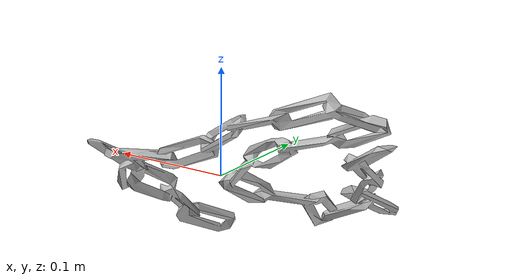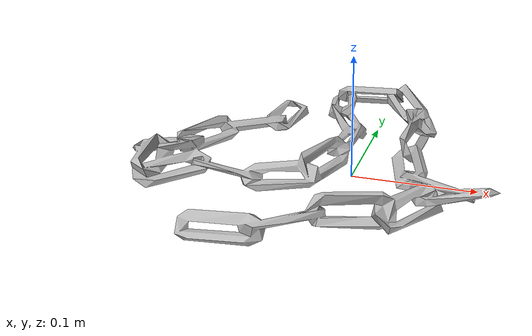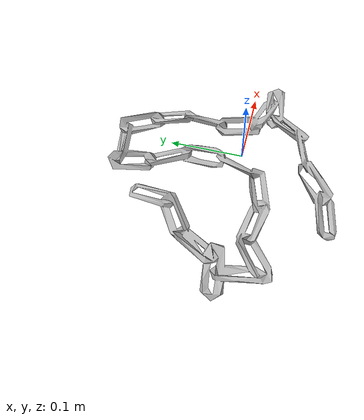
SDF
<?xml version="1.0" ?>
<sdf version="1.4">
  <model name='ycb_059_chain'>
    <link name='body'>
      <inertial>
        <mass>0.1</mass>
        <pose>-0.0342749379267 0.0181753261039 0.00901024773831 0 0 0</pose>
        <inertia>
          <ixx>0.000636099234782</ixx>
          <ixy>-4.39731361801e-05</ixy>
          <ixz>-5.32254429225e-06</ixz>
          <iyy>0.000558358205085</iyy>
          <iyz>-9.63504054245e-07</iyz>
          <izz>0.00118928367282</izz>
        </inertia>
      </inertial>
      <visual name='ycb_059_chain_visual'>
        <pose>0 0 0 0 0 0</pose>
        <geometry>
          <mesh>
            <uri>model://ycb_059_chain/meshes/textured.dae</uri>
          </mesh>
        </geometry>
      </visual>
      <collision name='ycb_059_chain_collision'>
        <pose>0 0 0 0 0 0</pose>
        <geometry>
          <mesh>
            <uri>model://ycb_059_chain/meshes/nontextured.stl</uri>
          </mesh>
        </geometry>
        <max_contacts>10</max_contacts>
        <surface>
          <contact>
            <ode>
              <kp>1e15</kp>
              <kd>1e13</kd>
            </ode>
          </contact>
        </surface>
      </collision>
    </link>
  </model>
</sdf>
